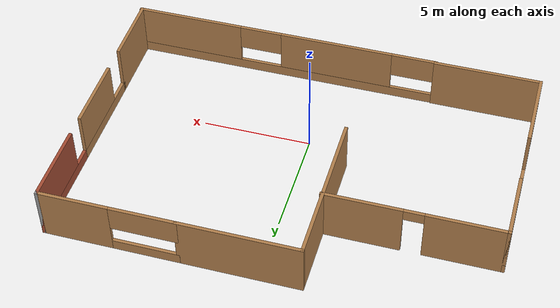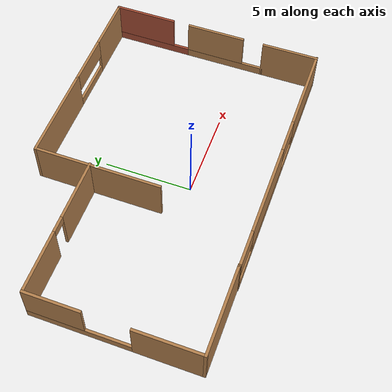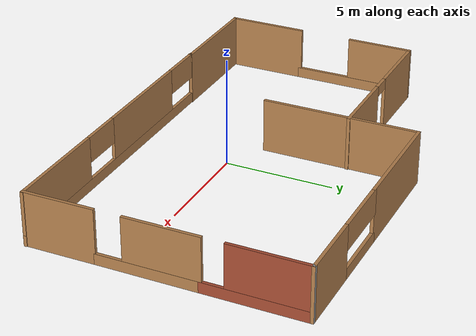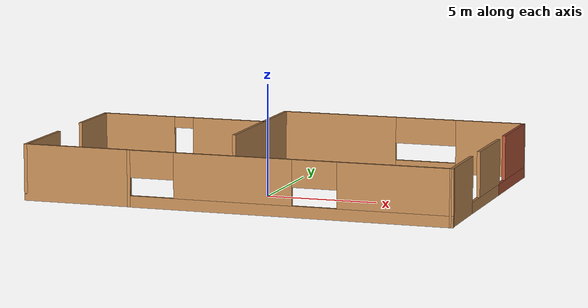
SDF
<?xml version='1.0'?>
<sdf version='1.7'>
  <model name='mybuilding'>
    <pose>-0.068746 1.91534 0 0 -0 0</pose>
    <link name='Wall_1'>
      <pose>2.42499 -6.18711 0 0 -0 -0.000177</pose>
      <visual name='Wall_1_Visual_0'>
        <pose>-7.22598 0 1.25 0 -0 0</pose>
        <geometry>
          <box>
            <size>0.144016 0.15 2.5</size>
          </box>
        </geometry>
        <material>
          <script>
            <uri>file://media/materials/scripts/gazebo.material</uri>
            <name>Gazebo/Wood</name>
          </script>
          <ambient>0.996078 0.47451 0.0196078 1</ambient>
        </material>
        <meta>
          <layer>0</layer>
        </meta>
      </visual>
      <collision name='Wall_1_Collision_0'>
        <geometry>
          <box>
            <size>0.144016 0.15 2.5</size>
          </box>
        </geometry>
        <pose>-7.22598 0 1.25 0 -0 0</pose>
      </collision>
      <visual name='Wall_1_Visual_1'>
        <pose>0.072008 0 0.25 0 -0 0</pose>
        <geometry>
          <box>
            <size>14.452 0.15 0.5</size>
          </box>
        </geometry>
        <material>
          <script>
            <uri>file://media/materials/scripts/gazebo.material</uri>
            <name>Gazebo/Wood</name>
          </script>
          <ambient>0.996078 0.47451 0.0196078 1</ambient>
        </material>
        <meta>
          <layer>0</layer>
        </meta>
      </visual>
      <collision name='Wall_1_Collision_1'>
        <geometry>
          <box>
            <size>14.452 0.15 0.5</size>
          </box>
        </geometry>
        <pose>0.072008 0 0.25 0 -0 0</pose>
      </collision>
      <visual name='Wall_1_Visual_2'>
        <pose>-2.47777 0 1.5 0 -0 0</pose>
        <geometry>
          <box>
            <size>5.35239 0.15 2</size>
          </box>
        </geometry>
        <material>
          <script>
            <uri>file://media/materials/scripts/gazebo.material</uri>
            <name>Gazebo/Wood</name>
          </script>
          <ambient>0.996078 0.47451 0.0196078 1</ambient>
        </material>
        <meta>
          <layer>0</layer>
        </meta>
      </visual>
      <collision name='Wall_1_Collision_2'>
        <geometry>
          <box>
            <size>5.35239 0.15 2</size>
          </box>
        </geometry>
        <pose>-2.47777 0 1.5 0 -0 0</pose>
      </collision>
      <visual name='Wall_1_Visual_3'>
        <pose>4.7482 0 1.5 0 -0 0</pose>
        <geometry>
          <box>
            <size>5.09957 0.15 2</size>
          </box>
        </geometry>
        <material>
          <script>
            <uri>file://media/materials/scripts/gazebo.material</uri>
            <name>Gazebo/Wood</name>
          </script>
          <ambient>0.996078 0.47451 0.0196078 1</ambient>
        </material>
        <meta>
          <layer>0</layer>
        </meta>
      </visual>
      <collision name='Wall_1_Collision_3'>
        <geometry>
          <box>
            <size>5.09957 0.15 2</size>
          </box>
        </geometry>
        <pose>4.7482 0 1.5 0 -0 0</pose>
      </collision>
      <visual name='Wall_1_Visual_4'>
        <pose>-6.15397 0 1.9 0 -0 0</pose>
        <geometry>
          <box>
            <size>2 0.15 1.2</size>
          </box>
        </geometry>
        <material>
          <script>
            <uri>file://media/materials/scripts/gazebo.material</uri>
            <name>Gazebo/Wood</name>
          </script>
          <ambient>0.996078 0.47451 0.0196078 1</ambient>
        </material>
        <meta>
          <layer>0</layer>
        </meta>
      </visual>
      <collision name='Wall_1_Collision_4'>
        <geometry>
          <box>
            <size>2 0.15 1.2</size>
          </box>
        </geometry>
        <pose>-6.15397 0 1.9 0 -0 0</pose>
      </collision>
      <visual name='Wall_1_Visual_5'>
        <pose>1.19842 0 1.9 0 -0 0</pose>
        <geometry>
          <box>
            <size>2 0.15 1.2</size>
          </box>
        </geometry>
        <material>
          <script>
            <uri>file://media/materials/scripts/gazebo.material</uri>
            <name>Gazebo/Wood</name>
          </script>
          <ambient>0.996078 0.47451 0.0196078 1</ambient>
        </material>
        <meta>
          <layer>0</layer>
        </meta>
      </visual>
      <collision name='Wall_1_Collision_5'>
        <geometry>
          <box>
            <size>2 0.15 1.2</size>
          </box>
        </geometry>
        <pose>1.19842 0 1.9 0 -0 0</pose>
      </collision>
    </link>
    <link name='Wall_11'>
      <pose>6.55271 6.18873 0 0 -0 3.14159</pose>
      <visual name='Wall_11_Visual_0'>
        <pose>-1.50614 0 1.25 0 -0 0</pose>
        <geometry>
          <box>
            <size>3.23773 0.15 2.5</size>
          </box>
        </geometry>
        <material>
          <script>
            <uri>file://media/materials/scripts/gazebo.material</uri>
            <name>Gazebo/Wood</name>
          </script>
          <ambient>0.996078 0.47451 0.0196078 1</ambient>
        </material>
        <meta>
          <layer>0</layer>
        </meta>
      </visual>
      <collision name='Wall_11_Collision_0'>
        <geometry>
          <box>
            <size>3.23773 0.15 2.5</size>
          </box>
        </geometry>
        <pose>-1.50614 0 1.25 0 -0 0</pose>
      </collision>
      <visual name='Wall_11_Visual_1'>
        <pose>1.61886 0 0.25 0 -0 0</pose>
        <geometry>
          <box>
            <size>3.01227 0.15 0.5</size>
          </box>
        </geometry>
        <material>
          <script>
            <uri>file://media/materials/scripts/gazebo.material</uri>
            <name>Gazebo/Wood</name>
          </script>
          <ambient>0.996078 0.47451 0.0196078 1</ambient>
        </material>
        <meta>
          <layer>0</layer>
        </meta>
      </visual>
      <collision name='Wall_11_Collision_1'>
        <geometry>
          <box>
            <size>3.01227 0.15 0.5</size>
          </box>
        </geometry>
        <pose>1.61886 0 0.25 0 -0 0</pose>
      </collision>
      <visual name='Wall_11_Visual_2'>
        <pose>1.61886 0 1.9 0 -0 0</pose>
        <geometry>
          <box>
            <size>3.01227 0.15 1.2</size>
          </box>
        </geometry>
        <material>
          <script>
            <uri>file://media/materials/scripts/gazebo.material</uri>
            <name>Gazebo/Wood</name>
          </script>
          <ambient>0.996078 0.47451 0.0196078 1</ambient>
        </material>
        <meta>
          <layer>0</layer>
        </meta>
      </visual>
      <collision name='Wall_11_Collision_2'>
        <geometry>
          <box>
            <size>3.01227 0.15 1.2</size>
          </box>
        </geometry>
        <pose>1.61886 0 1.9 0 -0 0</pose>
      </collision>
    </link>
    <link name='Wall_12'>
      <collision name='Wall_12_Collision'>
        <geometry>
          <box>
            <size>5.5 0.15 2.5</size>
          </box>
        </geometry>
        <pose>0 0 1.25 0 -0 0</pose>
      </collision>
      <visual name='Wall_12_Visual'>
        <pose>0 0 1.25 0 -0 0</pose>
        <geometry>
          <box>
            <size>5.5 0.15 2.5</size>
          </box>
        </geometry>
        <material>
          <script>
            <uri>file://media/materials/scripts/gazebo.material</uri>
            <name>Gazebo/Wood</name>
          </script>
          <ambient>0.996078 0.47451 0.0196078 1</ambient>
        </material>
        <meta>
          <layer>0</layer>
        </meta>
      </visual>
      <pose>0.827711 6.18873 0 0 -0 3.14159</pose>
    </link>
    <link name='Wall_13'>
      <collision name='Wall_13_Collision'>
        <geometry>
          <box>
            <size>7.25 0.15 2.5</size>
          </box>
        </geometry>
        <pose>0 0 1.25 0 -0 0</pose>
      </collision>
      <visual name='Wall_13_Visual'>
        <pose>0 0 1.25 0 -0 0</pose>
        <geometry>
          <box>
            <size>7.25 0.15 2.5</size>
          </box>
        </geometry>
        <material>
          <script>
            <uri>file://media/materials/scripts/gazebo.material</uri>
            <name>Gazebo/Wood</name>
          </script>
          <ambient>0.996078 0.47451 0.0196078 1</ambient>
        </material>
        <meta>
          <layer>0</layer>
        </meta>
      </visual>
      <pose>-1.84729 2.63873 0 0 -0 -1.5708</pose>
    </link>
    <link name='Wall_17'>
      <collision name='Wall_17_Collision'>
        <geometry>
          <box>
            <size>5 0.15 2.5</size>
          </box>
        </geometry>
        <pose>0 0 1.25 0 -0 0</pose>
      </collision>
      <visual name='Wall_17_Visual'>
        <pose>0 0 1.25 0 -0 0</pose>
        <geometry>
          <box>
            <size>5 0.15 2.5</size>
          </box>
        </geometry>
        <material>
          <script>
            <uri>file://media/materials/scripts/gazebo.material</uri>
            <name>Gazebo/Wood</name>
          </script>
          <ambient>0.996078 0.47451 0.0196078 1</ambient>
        </material>
        <meta>
          <layer>0</layer>
        </meta>
      </visual>
      <pose>-7.22298 -6.15524 0 0 -0 3.14159</pose>
    </link>
    <link name='Wall_19'>
      <collision name='Wall_19_Collision'>
        <geometry>
          <box>
            <size>3.75 0.15 2.5</size>
          </box>
        </geometry>
        <pose>0 0 1.25 0 -0 0</pose>
      </collision>
      <visual name='Wall_19_Visual'>
        <pose>0 0 1.25 0 -0 0</pose>
        <geometry>
          <box>
            <size>3.75 0.15 2.5</size>
          </box>
        </geometry>
        <material>
          <script>
            <uri>file://media/materials/scripts/gazebo.material</uri>
            <name>Gazebo/Wood</name>
          </script>
          <ambient>0.996078 0.47451 0.0196078 1</ambient>
        </material>
        <meta>
          <layer>0</layer>
        </meta>
      </visual>
      <pose>-9.64798 -4.35524 0 0 -0 1.5708</pose>
    </link>
    <link name='Wall_21'>
      <pose>-9.64798 0.244761 0 0 -0 1.5708</pose>
      <visual name='Wall_21_Visual_0'>
        <pose>0 0 0.25 0 -0 0</pose>
        <geometry>
          <box>
            <size>5.75 0.15 0.5</size>
          </box>
        </geometry>
        <material>
          <script>
            <uri>file://media/materials/scripts/gazebo.material</uri>
            <name>Gazebo/Wood</name>
          </script>
          <ambient>0.996078 0.47451 0.0196078 1</ambient>
        </material>
        <meta>
          <layer>0</layer>
        </meta>
      </visual>
      <collision name='Wall_21_Collision_0'>
        <geometry>
          <box>
            <size>5.75 0.15 0.5</size>
          </box>
        </geometry>
        <pose>0 0 0.25 0 -0 0</pose>
      </collision>
      <visual name='Wall_21_Visual_1'>
        <pose>1.3064 0 1.5 0 -0 0</pose>
        <geometry>
          <box>
            <size>3.1372 0.15 2</size>
          </box>
        </geometry>
        <material>
          <script>
            <uri>file://media/materials/scripts/gazebo.material</uri>
            <name>Gazebo/Wood</name>
          </script>
          <ambient>0.996078 0.47451 0.0196078 1</ambient>
        </material>
        <meta>
          <layer>0</layer>
        </meta>
      </visual>
      <collision name='Wall_21_Collision_1'>
        <geometry>
          <box>
            <size>3.1372 0.15 2</size>
          </box>
        </geometry>
        <pose>1.3064 0 1.5 0 -0 0</pose>
      </collision>
    </link>
    <link name='Wall_25'>
      <pose>-5.72298 3.04476 0 0 -0 0</pose>
      <visual name='Wall_25_Visual_0'>
        <pose>-2.22342 0 1.25 0 -0 0</pose>
        <geometry>
          <box>
            <size>3.55316 0.15 2.5</size>
          </box>
        </geometry>
        <material>
          <script>
            <uri>file://media/materials/scripts/gazebo.material</uri>
            <name>Gazebo/Wood</name>
          </script>
          <ambient>0.996078 0.47451 0.0196078 1</ambient>
        </material>
        <meta>
          <layer>0</layer>
        </meta>
      </visual>
      <collision name='Wall_25_Collision_0'>
        <geometry>
          <box>
            <size>3.55316 0.15 2.5</size>
          </box>
        </geometry>
        <pose>-2.22342 0 1.25 0 -0 0</pose>
      </collision>
      <visual name='Wall_25_Visual_1'>
        <pose>2.22658 0 1.25 0 -0 0</pose>
        <geometry>
          <box>
            <size>3.54684 0.15 2.5</size>
          </box>
        </geometry>
        <material>
          <script>
            <uri>file://media/materials/scripts/gazebo.material</uri>
            <name>Gazebo/Wood</name>
          </script>
          <ambient>0.996078 0.47451 0.0196078 1</ambient>
        </material>
        <meta>
          <layer>0</layer>
        </meta>
      </visual>
      <collision name='Wall_25_Collision_1'>
        <geometry>
          <box>
            <size>3.54684 0.15 2.5</size>
          </box>
        </geometry>
        <pose>2.22658 0 1.25 0 -0 0</pose>
      </collision>
      <visual name='Wall_25_Visual_2'>
        <pose>0.003162 0 2.25 0 -0 0</pose>
        <geometry>
          <box>
            <size>0.9 0.15 0.5</size>
          </box>
        </geometry>
        <material>
          <script>
            <uri>file://media/materials/scripts/gazebo.material</uri>
            <name>Gazebo/Wood</name>
          </script>
          <ambient>0.996078 0.47451 0.0196078 1</ambient>
        </material>
        <meta>
          <layer>0</layer>
        </meta>
      </visual>
      <collision name='Wall_25_Collision_2'>
        <geometry>
          <box>
            <size>0.9 0.15 0.5</size>
          </box>
        </geometry>
        <pose>0.003162 0 2.25 0 -0 0</pose>
      </collision>
    </link>
    <link name='Wall_3'>
      <collision name='Wall_3_Collision'>
        <geometry>
          <box>
            <size>3.29656 0.15 2.5</size>
          </box>
        </geometry>
        <pose>0 0 1.25 0 -0 0</pose>
      </collision>
      <visual name='Wall_3_Visual'>
        <pose>0 0 1.25 0 -0 0</pose>
        <geometry>
          <box>
            <size>3.29656 0.15 2.5</size>
          </box>
        </geometry>
        <material>
          <script>
            <uri>file://media/materials/scripts/gazebo.material</uri>
            <name>Gazebo/Wood</name>
          </script>
          <ambient>0.996078 0.47451 0.0196078 1</ambient>
        </material>
        <meta>
          <layer>0</layer>
        </meta>
      </visual>
      <pose>9.61004 -4.61512 0 0 -0 1.57545</pose>
    </link>
    <link name='Wall_6'>
      <pose>9.60271 -0.711269 0 0 -0 1.5708</pose>
      <visual name='Wall_6_Visual_0'>
        <pose>0 0 0.25 0 -0 0</pose>
        <geometry>
          <box>
            <size>4.75 0.15 0.5</size>
          </box>
        </geometry>
        <material>
          <script>
            <uri>file://media/materials/scripts/gazebo.material</uri>
            <name>Gazebo/Wood</name>
          </script>
          <ambient>0.996078 0.47451 0.0196078 1</ambient>
        </material>
        <meta>
          <layer>0</layer>
        </meta>
      </visual>
      <collision name='Wall_6_Collision_0'>
        <geometry>
          <box>
            <size>4.75 0.15 0.5</size>
          </box>
        </geometry>
        <pose>0 0 0.25 0 -0 0</pose>
      </collision>
      <visual name='Wall_6_Visual_1'>
        <pose>0.651142 0 1.5 0 -0 0</pose>
        <geometry>
          <box>
            <size>3.44772 0.15 2</size>
          </box>
        </geometry>
        <material>
          <script>
            <uri>file://media/materials/scripts/gazebo.material</uri>
            <name>Gazebo/Wood</name>
          </script>
          <ambient>0.996078 0.47451 0.0196078 1</ambient>
        </material>
        <meta>
          <layer>0</layer>
        </meta>
      </visual>
      <collision name='Wall_6_Collision_1'>
        <geometry>
          <box>
            <size>3.44772 0.15 2</size>
          </box>
        </geometry>
        <pose>0.651142 0 1.5 0 -0 0</pose>
      </collision>
    </link>
    <link name='Wall_8'>
      <pose>9.60271 3.88873 0 0 -0 1.5708</pose>
      <visual name='Wall_8_Visual_0'>
        <pose>0 0 0.25 0 -0 0</pose>
        <geometry>
          <box>
            <size>4.75 0.15 0.5</size>
          </box>
        </geometry>
        <material>
          <script>
            <uri>file://media/materials/scripts/gazebo.material</uri>
            <name>Gazebo/Bricks</name>
          </script>
          <ambient>0.996078 0.47451 0.0196078 1</ambient>
        </material>
        <meta>
          <layer>0</layer>
        </meta>
      </visual>
      <collision name='Wall_8_Collision_0'>
        <geometry>
          <box>
            <size>4.75 0.15 0.5</size>
          </box>
        </geometry>
        <pose>0 0 0.25 0 -0 0</pose>
      </collision>
      <visual name='Wall_8_Visual_1'>
        <pose>0.544744 0 1.5 0 -0 0</pose>
        <geometry>
          <box>
            <size>3.66051 0.15 2</size>
          </box>
        </geometry>
        <material>
          <script>
            <uri>file://media/materials/scripts/gazebo.material</uri>
            <name>Gazebo/Bricks</name>
          </script>
          <ambient>0.996078 0.47451 0.0196078 1</ambient>
        </material>
        <meta>
          <layer>0</layer>
        </meta>
      </visual>
      <collision name='Wall_8_Collision_1'>
        <geometry>
          <box>
            <size>3.66051 0.15 2</size>
          </box>
        </geometry>
        <pose>0.544744 0 1.5 0 -0 0</pose>
      </collision>
    </link>
    <link name='Wall_9'>
      <collision name='Wall_9_Collision'>
        <geometry>
          <box>
            <size>0.15 0.15 2.5</size>
          </box>
        </geometry>
        <pose>0 0 1.25 0 -0 0</pose>
      </collision>
      <visual name='Wall_9_Visual'>
        <pose>0 0 1.25 0 -0 0</pose>
        <geometry>
          <box>
            <size>0.15 0.15 2.5</size>
          </box>
        </geometry>
        <material>
          <script>
            <uri>file://media/materials/scripts/gazebo.material</uri>
            <name>Gazebo/Grey</name>
          </script>
          <ambient>1 1 1 1</ambient>
        </material>
        <meta>
          <layer>0</layer>
        </meta>
      </visual>
      <pose>9.60271 6.18873 0 0 -0 0</pose>
    </link>
    <static>1</static>
  </model>
</sdf>
